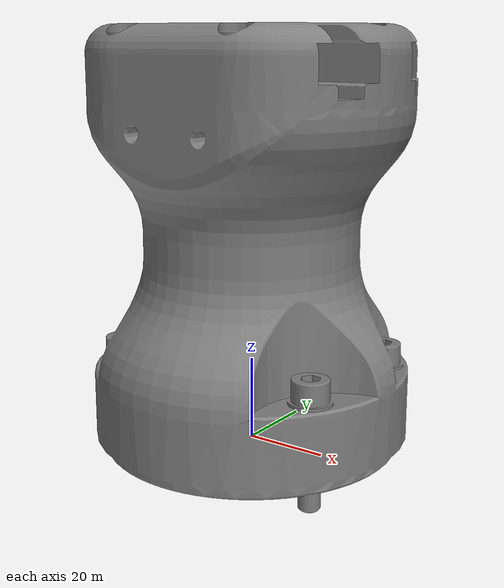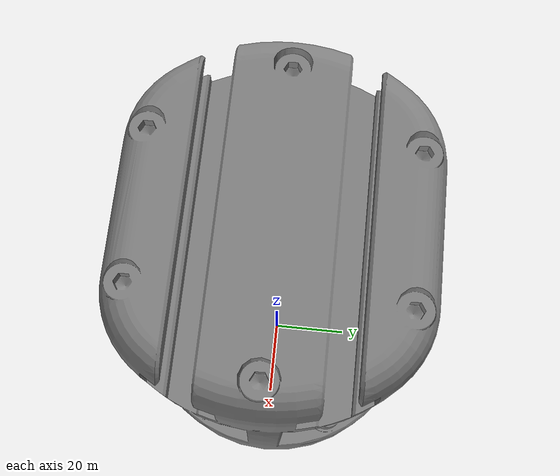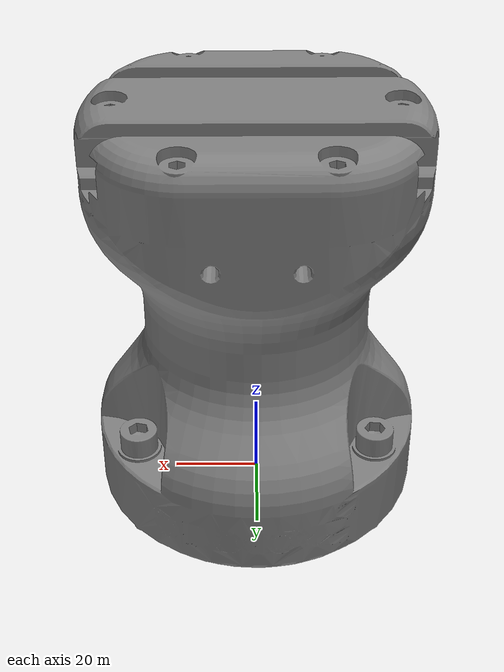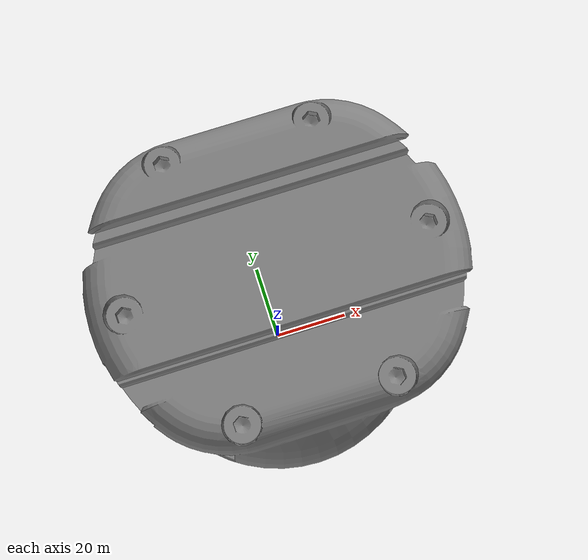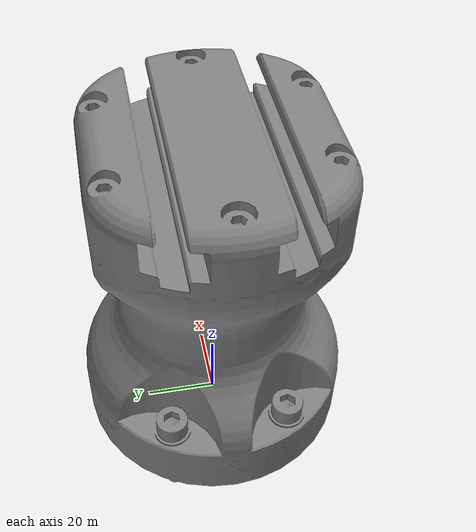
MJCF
<mujoco model="hande">
  <default>
    <default class="visual">
      <geom group="2" type="mesh" contype="0" conaffinity="0"/>
    </default>
    <default class="collision">
      <geom group="3" type="mesh"/>
    </default>
  </default>
  <asset>
    <mesh file="hande.obj"/>
  </asset>
  <worldbody>
    <body name="hande">
      <geom mesh="hande" class="visual"/>
      <geom mesh="hande" class="collision"/>
    </body>
  </worldbody>
</mujoco>
